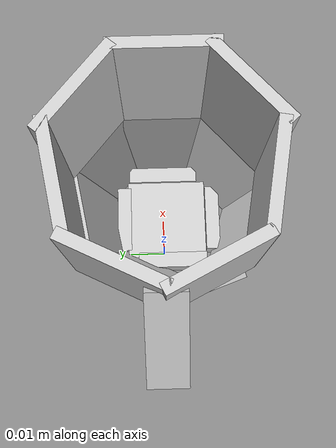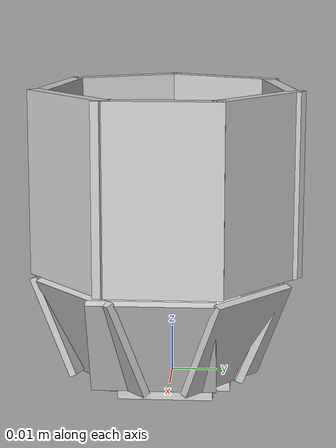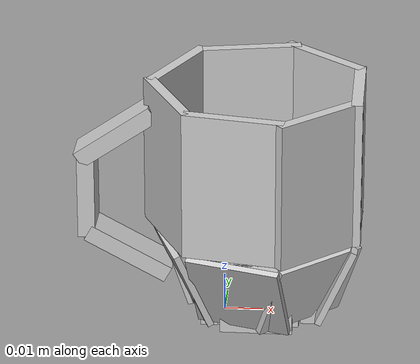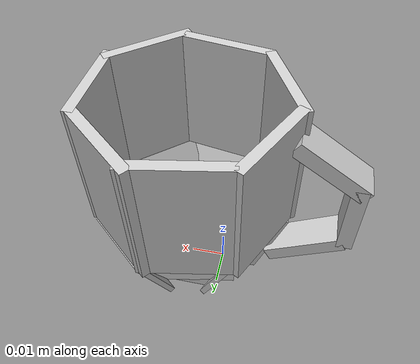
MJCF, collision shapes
<?xml version='1.0' encoding='utf-8'?>
<mujoco model="porcelain_mug">
  <asset>
  <texture file="porcelain_mug_texture.png" name="tex-porcelain_mug" type="2d" />
  <material name="porcelain_mug" reflectance="0.5" texrepeat="1 1" texture="tex-porcelain_mug" texuniform="false" />
  <mesh file="visual/porcelain_mug_vis.msh" name="porcelain_mug_vis" scale="0.6 0.6 0.6" /></asset>
  <worldbody>
    <body>
      <body name="object">
      <geom solimp="0.998 0.998 0.001" solref="0.001 1" density="100" friction="0.95 0.3 0.1" type="mesh" mesh="porcelain_mug_vis" conaffinity="0" contype="0" group="1" material="porcelain_mug" /><geom solimp="0.998 0.998 0.001" solref="0.001 1" density="100" friction="0.95 0.3 0.1" type="box" pos="-0.035718 -0.0 0.033611999999999996" quat="0.00000 0.00000 1.00000 0.00000" size="0.0022559999999999998 0.004782 0.01185" group="0" rgba="0.8 0.8 0.8 0.3" /><geom solimp="0.998 0.998 0.001" solref="0.001 1" density="100" friction="0.95 0.3 0.1" type="box" pos="-0.024947999999999998 0.0 0.017172" quat="0.50997 -0.00000 0.86019 -0.00000" size="0.0022559999999999998 0.004782 0.01185" group="0" rgba="0.8 0.8 0.8 0.3" /><geom solimp="0.998 0.998 0.001" solref="0.001 1" density="100" friction="0.95 0.3 0.1" type="box" pos="-0.02778 -0.0 0.05005199999999999" quat="0.46390 0.00000 -0.88589 0.00000" size="0.0022559999999999998 0.004782 0.01185" group="0" rgba="0.8 0.8 0.8 0.3" /><geom solimp="0.998 0.998 0.001" solref="0.001 1" density="100" friction="0.95 0.3 0.1" type="box" pos="0.034067999999999994 -0.000882 0.04551" quat="0.00000 0.00000 1.00000 0.00000" size="0.0014579999999999999 0.012978 0.019566" group="0" rgba="0.8 0.8 0.8 0.3" /><geom solimp="0.998 0.998 0.001" solref="0.001 1" density="100" friction="0.95 0.3 0.1" type="box" pos="0.008862 -0.0009839999999999998 0.00456" quat="0.50000 -0.50000 0.50000 0.50000" size="0.003126 0.011159999999999998 0.011159999999999998" group="0" rgba="0.8 0.8 0.8 0.3" /><geom solimp="0.998 0.998 0.001" solref="0.001 1" density="100" friction="0.95 0.3 0.1" type="box" pos="0.029609999999999997 -0.0024179999999999996 0.01434" quat="0.69215 0.69215 0.14468 -0.14468" size="0.000846 0.011334 0.012978" group="0" rgba="0.8 0.8 0.8 0.3" /><geom solimp="0.998 0.998 0.001" solref="0.001 1" density="100" friction="0.95 0.3 0.1" type="box" pos="0.023472 0.014664 0.01434" quat="0.68797 0.56492 0.42528 0.16339" size="0.000792 0.011196 0.011453999999999999" group="0" rgba="0.8 0.8 0.8 0.3" /><geom solimp="0.998 0.998 0.001" solref="0.001 1" density="100" friction="0.95 0.3 0.1" type="box" pos="0.024516 0.018708 0.04551" quat="0.00000 -0.42525 0.90508 0.00000" size="0.0014579999999999999 0.012978 0.019566" group="0" rgba="0.8 0.8 0.8 0.3" /><geom solimp="0.998 0.998 0.001" solref="0.001 1" density="100" friction="0.95 0.3 0.1" type="box" pos="0.005267999999999999 0.023208 0.04551" quat="0.00000 -0.76965 0.63846 0.00000" size="0.0014579999999999999 0.012978 0.019566" group="0" rgba="0.8 0.8 0.8 0.3" /><geom solimp="0.998 0.998 0.001" solref="0.001 1" density="100" friction="0.95 0.3 0.1" type="box" pos="0.0064139999999999996 0.017202 0.01434" quat="0.55326 0.33057 0.62508 0.44034" size="0.000846 0.011334 0.012978" group="0" rgba="0.8 0.8 0.8 0.3" /><geom solimp="0.998 0.998 0.001" solref="0.001 1" density="100" friction="0.95 0.3 0.1" type="box" pos="-0.006834000000000001 0.007632 0.01434" quat="0.01588 -0.29770 -0.64138 0.70693" size="0.000846 0.011334 0.012978" group="0" rgba="0.8 0.8 0.8 0.3" /><geom solimp="0.998 0.998 0.001" solref="0.001 1" density="100" friction="0.95 0.3 0.1" type="box" pos="-0.013151999999999999 0.010722 0.04551" quat="0.00000 -0.97400 0.22653 0.00000" size="0.0014579999999999999 0.012978 0.019566" group="0" rgba="0.8 0.8 0.8 0.3" /><geom solimp="0.998 0.998 0.001" solref="0.001 1" density="100" friction="0.95 0.3 0.1" type="box" pos="-0.013722 -0.010824 0.04551" quat="0.00000 -0.23315 0.97244 0.00000" size="0.0014639999999999998 0.012978 0.019566" group="0" rgba="0.8 0.8 0.8 0.3" /><geom solimp="0.998 0.998 0.001" solref="0.001 1" density="100" friction="0.95 0.3 0.1" type="box" pos="-0.010493999999999998 -0.00825 0.01434" quat="0.02182 -0.26310 0.65634 0.70677" size="0.0008399999999999999 0.011315999999999998 0.011951999999999999" group="0" rgba="0.8 0.8 0.8 0.3" /><geom solimp="0.998 0.998 0.001" solref="0.001 1" density="100" friction="0.95 0.3 0.1" type="box" pos="0.0049559999999999995 -0.020987999999999996 0.01434" quat="0.52881 -0.29653 0.64193 -0.46942" size="0.000846 0.011328 0.012414" group="0" rgba="0.8 0.8 0.8 0.3" /><geom solimp="0.998 0.998 0.001" solref="0.001 1" density="100" friction="0.95 0.3 0.1" type="box" pos="0.0038759999999999997 -0.023964000000000003 0.04551" quat="-0.00000 -0.76567 -0.64323 -0.00000" size="0.0014579999999999999 0.012978 0.019566" group="0" rgba="0.8 0.8 0.8 0.3" /><geom solimp="0.998 0.998 0.001" solref="0.001 1" density="100" friction="0.95 0.3 0.1" type="box" pos="0.025032 -0.019482 0.04551" quat="0.00000 0.41049 0.91187 0.00000" size="0.0014579999999999999 0.012978 0.019566" group="0" rgba="0.8 0.8 0.8 0.3" /><geom solimp="0.998 0.998 0.001" solref="0.001 1" density="100" friction="0.95 0.3 0.1" type="box" pos="0.02274 -0.015486 0.01434" quat="0.69053 -0.57176 0.41604 -0.15219" size="0.000846 0.011334 0.012978" group="0" rgba="0.8 0.8 0.8 0.3" /><geom solimp="0.998 0.998 0.001" solref="0.001 1" density="100" friction="0.95 0.3 0.1" type="box" pos="0.009174 -0.014346 0.00456" quat="0.50000 0.50000 -0.50000 -0.50000" size="0.001956 0.003126 0.009323999999999999" group="0" rgba="0.8 0.8 0.8 0.3" /><geom solimp="0.998 0.998 0.001" solref="0.001 1" density="100" friction="0.95 0.3 0.1" type="box" pos="0.022494 -0.000102 0.00456" quat="0.70711 0.70711 0.00000 -0.00000" size="0.00216 0.003126 0.009858" group="0" rgba="0.8 0.8 0.8 0.3" /><geom solimp="0.998 0.998 0.001" solref="0.001 1" density="100" friction="0.95 0.3 0.1" type="box" pos="-0.0031439999999999997 -0.002526 0.00456" quat="0.70711 0.70711 0.00000 -0.00000" size="0.00216 0.003126 0.009858" group="0" rgba="0.8 0.8 0.8 0.3" /><geom solimp="0.998 0.998 0.001" solref="0.001 1" density="100" friction="0.95 0.3 0.1" type="box" pos="0.009174 0.011322 0.00456" quat="0.50000 0.50000 -0.50000 -0.50000" size="0.001956 0.003126 0.009323999999999999" group="0" rgba="0.8 0.8 0.8 0.3" /></body>
      <site rgba="0 0 0 0" size="0.003" pos="0.0 0.0 -0.036" name="bottom_site" />
      <site rgba="0 0 0 0" size="0.003" pos="0.0 0.0 0.024" name="top_site" />
      <site rgba="0 0 0 0" size="0.003" pos="0.015 0.015 0.0" name="horizontal_radius_site" />
    </body>
  </worldbody>
</mujoco>
